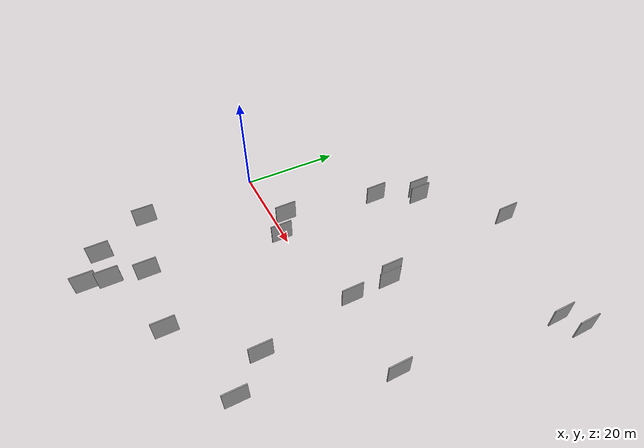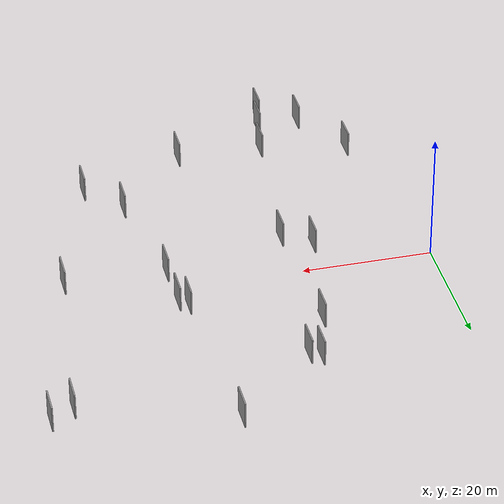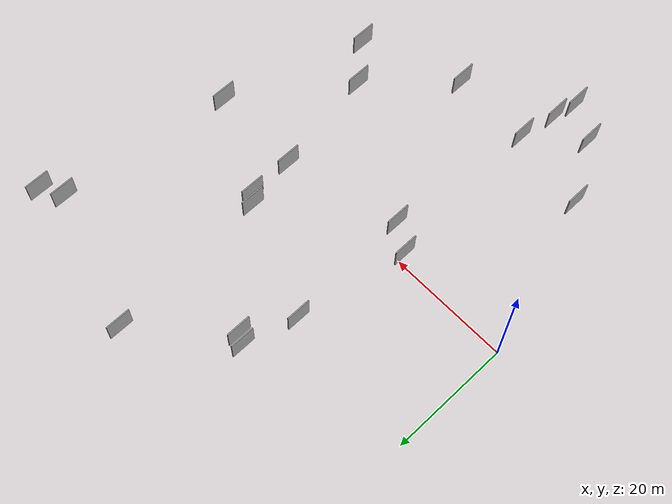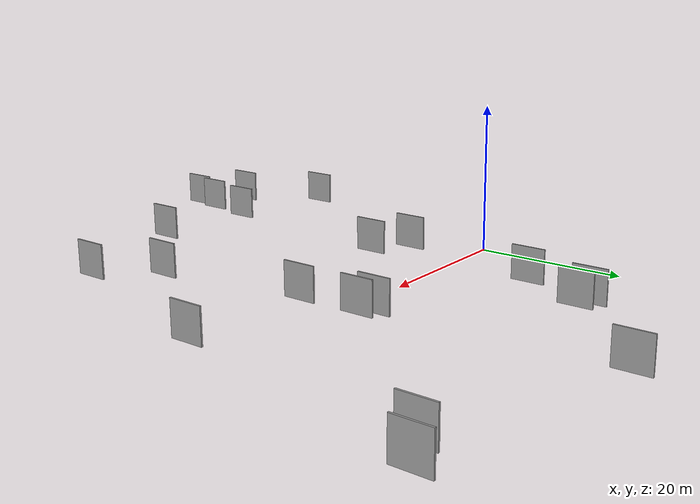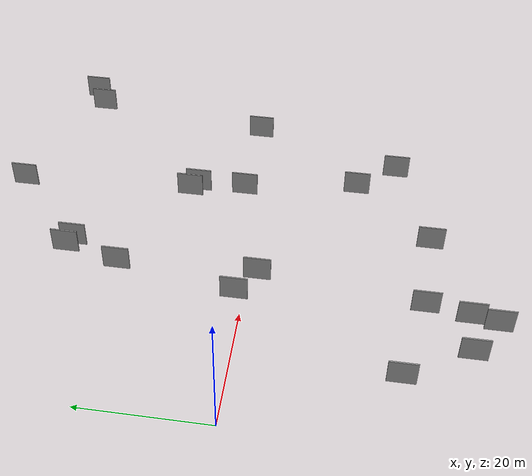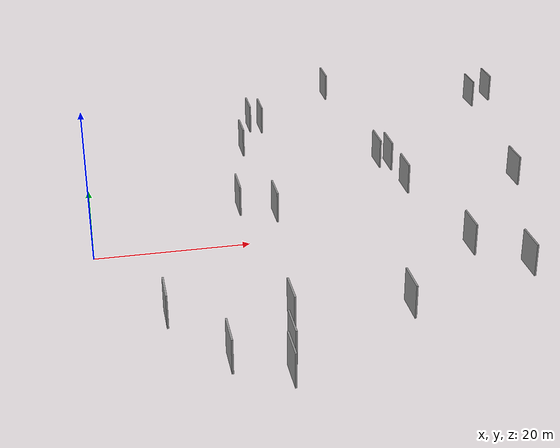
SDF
<sdf version="1.6">
 <world name="default">
  <scene>
   <sky><clouds><speed>12</speed></clouds></sky>
   <ambient>0.4 0.4 0.4 1</ambient>
   <background>0.7 0.7 0.7 1</background>
   <shadows>1</shadows>
  </scene>
  <gravity>0 0 -9.8066</gravity>
  <magnetic_field>6e-06 2.3e-05 -4.2e-05</magnetic_field>
  <physics default="0" name="default_physics" type="ode">
   <ode>
    <solver>
     <type>quick</type>
     <iters>10</iters>
     <sor>1.0</sor>
     <use_dynamic_moi_rescaling>0</use_dynamic_moi_rescaling>
    </solver>
    <constraints>
     <cfm>0</cfm>
     <erp>0.2</erp>
     <contact_max_correcting_vel>100</contact_max_correcting_vel>
     <contact_surface_layer>0.001</contact_surface_layer>
    </constraints>
   </ode>
   <max_step_size>0.004</max_step_size>
   <real_time_factor>1</real_time_factor>
   <real_time_update_rate>250</real_time_update_rate>
  </physics>
  <light name="sun" type="directional">
   <pose>0 0 10 0 0 0</pose>
   <diffuse>0.8 0.8 0.8 1</diffuse>
   <specular>0.2 0.2 0.2 1</specular>
   <attenuation>
    <range>1000</range>
    <constant>0.9</constant>
    <linear>0.01</linear>
    <quadratic>0.001</quadratic>
   </attenuation>
   <direction>-0.5 0.1 -0.9</direction>
  </light>
  <model name="grey_wall_1">
   <static>1</static>
   <pose>38.3655 37.7115 5.0 0.000000 0.000000 1.570796</pose>
   <link name="link">
    <pose>0 0 2.00 0 0 0</pose>
    <collision name="collision"><geometry><box><size>4.00 0.2 4.00</size></box></geometry></collision>
    <visual name="visual">
     <cast_shadows>0</cast_shadows>
     <geometry><box><size>4.00 0.2 4.00</size></box></geometry>
     <material>
      <script>
       <uri>model://grey_wall/materials/scripts</uri>
       <uri>model://grey_wall/materials/textures</uri>
       <name>vrc/grey_wall</name>
      </script>
     </material>
    </visual>
   </link>
  </model>
  <model name="grey_wall_2">
   <static>1</static>
   <pose>56.5113 1.9569 5.0 0.000000 0.000000 1.570796</pose>
   <link name="link">
    <pose>0 0 2.00 0 0 0</pose>
    <collision name="collision"><geometry><box><size>4.00 0.2 4.00</size></box></geometry></collision>
    <visual name="visual">
     <cast_shadows>0</cast_shadows>
     <geometry><box><size>4.00 0.2 4.00</size></box></geometry>
     <material>
      <script>
       <uri>model://grey_wall/materials/scripts</uri>
       <uri>model://grey_wall/materials/textures</uri>
       <name>vrc/grey_wall</name>
      </script>
     </material>
    </visual>
   </link>
  </model>
  <model name="grey_wall_3">
   <static>1</static>
   <pose>24.4101 27.0562 5.0 0.000000 0.000000 1.570796</pose>
   <link name="link">
    <pose>0 0 2.00 0 0 0</pose>
    <collision name="collision"><geometry><box><size>4.00 0.2 4.00</size></box></geometry></collision>
    <visual name="visual">
     <cast_shadows>0</cast_shadows>
     <geometry><box><size>4.00 0.2 4.00</size></box></geometry>
     <material>
      <script>
       <uri>model://grey_wall/materials/scripts</uri>
       <uri>model://grey_wall/materials/textures</uri>
       <name>vrc/grey_wall</name>
      </script>
     </material>
    </visual>
   </link>
  </model>
  <model name="grey_wall_4">
   <static>1</static>
   <pose>7.0909 -23.5787 5.0 0.000000 0.000000 1.570796</pose>
   <link name="link">
    <pose>0 0 2.00 0 0 0</pose>
    <collision name="collision"><geometry><box><size>4.00 0.2 4.00</size></box></geometry></collision>
    <visual name="visual">
     <cast_shadows>0</cast_shadows>
     <geometry><box><size>4.00 0.2 4.00</size></box></geometry>
     <material>
      <script>
       <uri>model://grey_wall/materials/scripts</uri>
       <uri>model://grey_wall/materials/textures</uri>
       <name>vrc/grey_wall</name>
      </script>
     </material>
    </visual>
   </link>
  </model>
  <model name="grey_wall_5">
   <static>1</static>
   <pose>22.0409 18.6400 5.0 0.000000 0.000000 1.570796</pose>
   <link name="link">
    <pose>0 0 2.00 0 0 0</pose>
    <collision name="collision"><geometry><box><size>4.00 0.2 4.00</size></box></geometry></collision>
    <visual name="visual">
     <cast_shadows>0</cast_shadows>
     <geometry><box><size>4.00 0.2 4.00</size></box></geometry>
     <material>
      <script>
       <uri>model://grey_wall/materials/scripts</uri>
       <uri>model://grey_wall/materials/textures</uri>
       <name>vrc/grey_wall</name>
      </script>
     </material>
    </visual>
   </link>
  </model>
  <model name="grey_wall_6">
   <static>1</static>
   <pose>41.2147 9.9140 5.0 0.000000 0.000000 1.570796</pose>
   <link name="link">
    <pose>0 0 2.00 0 0 0</pose>
    <collision name="collision"><geometry><box><size>4.00 0.2 4.00</size></box></geometry></collision>
    <visual name="visual">
     <cast_shadows>0</cast_shadows>
     <geometry><box><size>4.00 0.2 4.00</size></box></geometry>
     <material>
      <script>
       <uri>model://grey_wall/materials/scripts</uri>
       <uri>model://grey_wall/materials/textures</uri>
       <name>vrc/grey_wall</name>
      </script>
     </material>
    </visual>
   </link>
  </model>
  <model name="grey_wall_7">
   <static>1</static>
   <pose>20.2002 -26.4344 5.0 0.000000 0.000000 1.570796</pose>
   <link name="link">
    <pose>0 0 2.00 0 0 0</pose>
    <collision name="collision"><geometry><box><size>4.00 0.2 4.00</size></box></geometry></collision>
    <visual name="visual">
     <cast_shadows>0</cast_shadows>
     <geometry><box><size>4.00 0.2 4.00</size></box></geometry>
     <material>
      <script>
       <uri>model://grey_wall/materials/scripts</uri>
       <uri>model://grey_wall/materials/textures</uri>
       <name>vrc/grey_wall</name>
      </script>
     </material>
    </visual>
   </link>
  </model>
  <model name="grey_wall_8">
   <static>1</static>
   <pose>19.0362 -32.7172 5.0 0.000000 0.000000 1.570796</pose>
   <link name="link">
    <pose>0 0 2.00 0 0 0</pose>
    <collision name="collision"><geometry><box><size>4.00 0.2 4.00</size></box></geometry></collision>
    <visual name="visual">
     <cast_shadows>0</cast_shadows>
     <geometry><box><size>4.00 0.2 4.00</size></box></geometry>
     <material>
      <script>
       <uri>model://grey_wall/materials/scripts</uri>
       <uri>model://grey_wall/materials/textures</uri>
       <name>vrc/grey_wall</name>
      </script>
     </material>
    </visual>
   </link>
  </model>
  <model name="grey_wall_9">
   <static>1</static>
   <pose>60.2746 30.3568 5.0 0.000000 0.000000 1.570796</pose>
   <link name="link">
    <pose>0 0 2.00 0 0 0</pose>
    <collision name="collision"><geometry><box><size>4.00 0.2 4.00</size></box></geometry></collision>
    <visual name="visual">
     <cast_shadows>0</cast_shadows>
     <geometry><box><size>4.00 0.2 4.00</size></box></geometry>
     <material>
      <script>
       <uri>model://grey_wall/materials/scripts</uri>
       <uri>model://grey_wall/materials/textures</uri>
       <name>vrc/grey_wall</name>
      </script>
     </material>
    </visual>
   </link>
  </model>
  <model name="grey_wall_10">
   <static>1</static>
   <pose>49.3223 -21.0888 5.0 0.000000 0.000000 1.570796</pose>
   <link name="link">
    <pose>0 0 2.00 0 0 0</pose>
    <collision name="collision"><geometry><box><size>4.00 0.2 4.00</size></box></geometry></collision>
    <visual name="visual">
     <cast_shadows>0</cast_shadows>
     <geometry><box><size>4.00 0.2 4.00</size></box></geometry>
     <material>
      <script>
       <uri>model://grey_wall/materials/scripts</uri>
       <uri>model://grey_wall/materials/textures</uri>
       <name>vrc/grey_wall</name>
      </script>
     </material>
    </visual>
   </link>
  </model>
  <model name="grey_wall_11">
   <static>1</static>
   <pose>44.2575 -15.0906 5.0 0.000000 0.000000 1.570796</pose>
   <link name="link">
    <pose>0 0 2.00 0 0 0</pose>
    <collision name="collision"><geometry><box><size>4.00 0.2 4.00</size></box></geometry></collision>
    <visual name="visual">
     <cast_shadows>0</cast_shadows>
     <geometry><box><size>4.00 0.2 4.00</size></box></geometry>
     <material>
      <script>
       <uri>model://grey_wall/materials/scripts</uri>
       <uri>model://grey_wall/materials/textures</uri>
       <name>vrc/grey_wall</name>
      </script>
     </material>
    </visual>
   </link>
  </model>
  <model name="grey_wall_12">
   <static>1</static>
   <pose>33.2770 -26.9252 5.0 0.000000 0.000000 1.570796</pose>
   <link name="link">
    <pose>0 0 2.00 0 0 0</pose>
    <collision name="collision"><geometry><box><size>4.00 0.2 4.00</size></box></geometry></collision>
    <visual name="visual">
     <cast_shadows>0</cast_shadows>
     <geometry><box><size>4.00 0.2 4.00</size></box></geometry>
     <material>
      <script>
       <uri>model://grey_wall/materials/scripts</uri>
       <uri>model://grey_wall/materials/textures</uri>
       <name>vrc/grey_wall</name>
      </script>
     </material>
    </visual>
   </link>
  </model>
  <model name="grey_wall_13">
   <static>1</static>
   <pose>18.2216 -36.5539 5.0 0.000000 0.000000 1.570796</pose>
   <link name="link">
    <pose>0 0 2.00 0 0 0</pose>
    <collision name="collision"><geometry><box><size>4.00 0.2 4.00</size></box></geometry></collision>
    <visual name="visual">
     <cast_shadows>0</cast_shadows>
     <geometry><box><size>4.00 0.2 4.00</size></box></geometry>
     <material>
      <script>
       <uri>model://grey_wall/materials/scripts</uri>
       <uri>model://grey_wall/materials/textures</uri>
       <name>vrc/grey_wall</name>
      </script>
     </material>
    </visual>
   </link>
  </model>
  <model name="grey_wall_14">
   <static>1</static>
   <pose>22.9792 -2.1278 5.0 0.000000 0.000000 1.570796</pose>
   <link name="link">
    <pose>0 0 2.00 0 0 0</pose>
    <collision name="collision"><geometry><box><size>4.00 0.2 4.00</size></box></geometry></collision>
    <visual name="visual">
     <cast_shadows>0</cast_shadows>
     <geometry><box><size>4.00 0.2 4.00</size></box></geometry>
     <material>
      <script>
       <uri>model://grey_wall/materials/scripts</uri>
       <uri>model://grey_wall/materials/textures</uri>
       <name>vrc/grey_wall</name>
      </script>
     </material>
    </visual>
   </link>
  </model>
  <model name="grey_wall_15">
   <static>1</static>
   <pose>26.0284 26.3030 5.0 0.000000 0.000000 1.570796</pose>
   <link name="link">
    <pose>0 0 2.00 0 0 0</pose>
    <collision name="collision"><geometry><box><size>4.00 0.2 4.00</size></box></geometry></collision>
    <visual name="visual">
     <cast_shadows>0</cast_shadows>
     <geometry><box><size>4.00 0.2 4.00</size></box></geometry>
     <material>
      <script>
       <uri>model://grey_wall/materials/scripts</uri>
       <uri>model://grey_wall/materials/textures</uri>
       <name>vrc/grey_wall</name>
      </script>
     </material>
    </visual>
   </link>
  </model>
  <model name="grey_wall_16">
   <static>1</static>
   <pose>12.5636 -33.0045 5.0 0.000000 0.000000 1.570796</pose>
   <link name="link">
    <pose>0 0 2.00 0 0 0</pose>
    <collision name="collision"><geometry><box><size>4.00 0.2 4.00</size></box></geometry></collision>
    <visual name="visual">
     <cast_shadows>0</cast_shadows>
     <geometry><box><size>4.00 0.2 4.00</size></box></geometry>
     <material>
      <script>
       <uri>model://grey_wall/materials/scripts</uri>
       <uri>model://grey_wall/materials/textures</uri>
       <name>vrc/grey_wall</name>
      </script>
     </material>
    </visual>
   </link>
  </model>
  <model name="grey_wall_17">
   <static>1</static>
   <pose>63.7279 32.3004 5.0 0.000000 0.000000 1.570796</pose>
   <link name="link">
    <pose>0 0 2.00 0 0 0</pose>
    <collision name="collision"><geometry><box><size>4.00 0.2 4.00</size></box></geometry></collision>
    <visual name="visual">
     <cast_shadows>0</cast_shadows>
     <geometry><box><size>4.00 0.2 4.00</size></box></geometry>
     <material>
      <script>
       <uri>model://grey_wall/materials/scripts</uri>
       <uri>model://grey_wall/materials/textures</uri>
       <name>vrc/grey_wall</name>
      </script>
     </material>
    </visual>
   </link>
  </model>
  <model name="grey_wall_18">
   <static>1</static>
   <pose>18.7157 0.6243 5.0 0.000000 0.000000 1.570796</pose>
   <link name="link">
    <pose>0 0 2.00 0 0 0</pose>
    <collision name="collision"><geometry><box><size>4.00 0.2 4.00</size></box></geometry></collision>
    <visual name="visual">
     <cast_shadows>0</cast_shadows>
     <geometry><box><size>4.00 0.2 4.00</size></box></geometry>
     <material>
      <script>
       <uri>model://grey_wall/materials/scripts</uri>
       <uri>model://grey_wall/materials/textures</uri>
       <name>vrc/grey_wall</name>
      </script>
     </material>
    </visual>
   </link>
  </model>
  <model name="grey_wall_19">
   <static>1</static>
   <pose>39.8920 11.0665 5.0 0.000000 0.000000 1.570796</pose>
   <link name="link">
    <pose>0 0 2.00 0 0 0</pose>
    <collision name="collision"><geometry><box><size>4.00 0.2 4.00</size></box></geometry></collision>
    <visual name="visual">
     <cast_shadows>0</cast_shadows>
     <geometry><box><size>4.00 0.2 4.00</size></box></geometry>
     <material>
      <script>
       <uri>model://grey_wall/materials/scripts</uri>
       <uri>model://grey_wall/materials/textures</uri>
       <name>vrc/grey_wall</name>
      </script>
     </material>
    </visual>
   </link>
  </model>
  <model name="grey_wall_20">
   <static>1</static>
   <pose>41.3769 2.5176 5.0 0.000000 0.000000 1.570796</pose>
   <link name="link">
    <pose>0 0 2.00 0 0 0</pose>
    <collision name="collision"><geometry><box><size>4.00 0.2 4.00</size></box></geometry></collision>
    <visual name="visual">
     <cast_shadows>0</cast_shadows>
     <geometry><box><size>4.00 0.2 4.00</size></box></geometry>
     <material>
      <script>
       <uri>model://grey_wall/materials/scripts</uri>
       <uri>model://grey_wall/materials/textures</uri>
       <name>vrc/grey_wall</name>
      </script>
     </material>
    </visual>
   </link>
  </model>
 </world>
</sdf>
